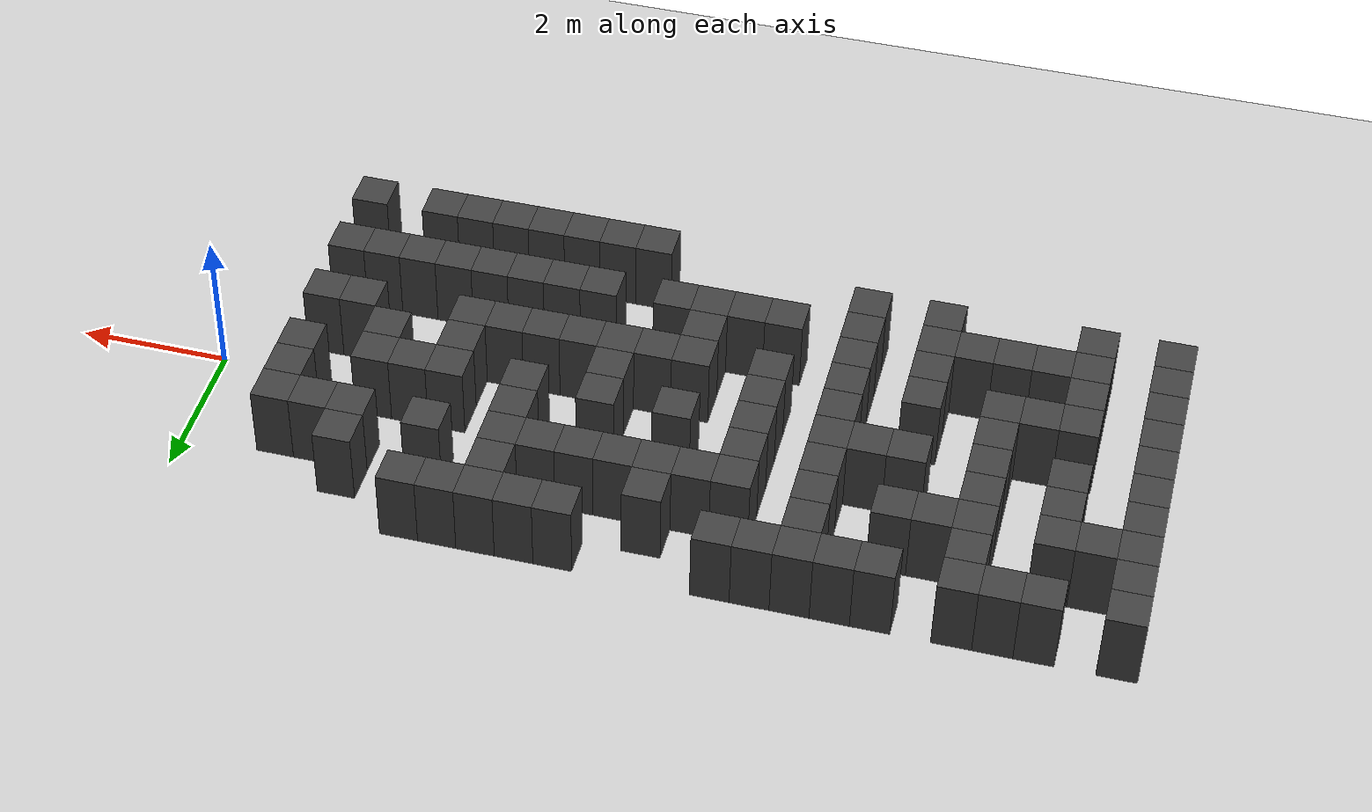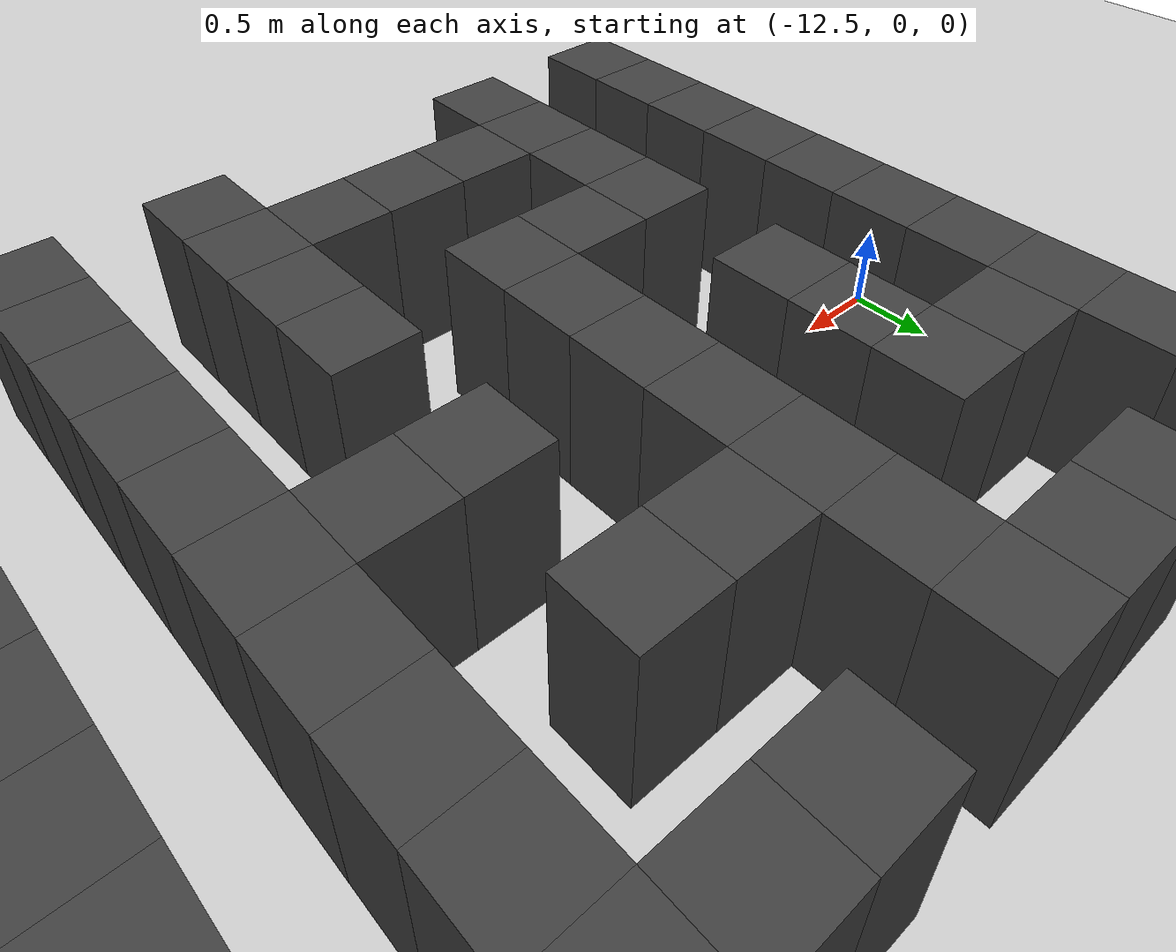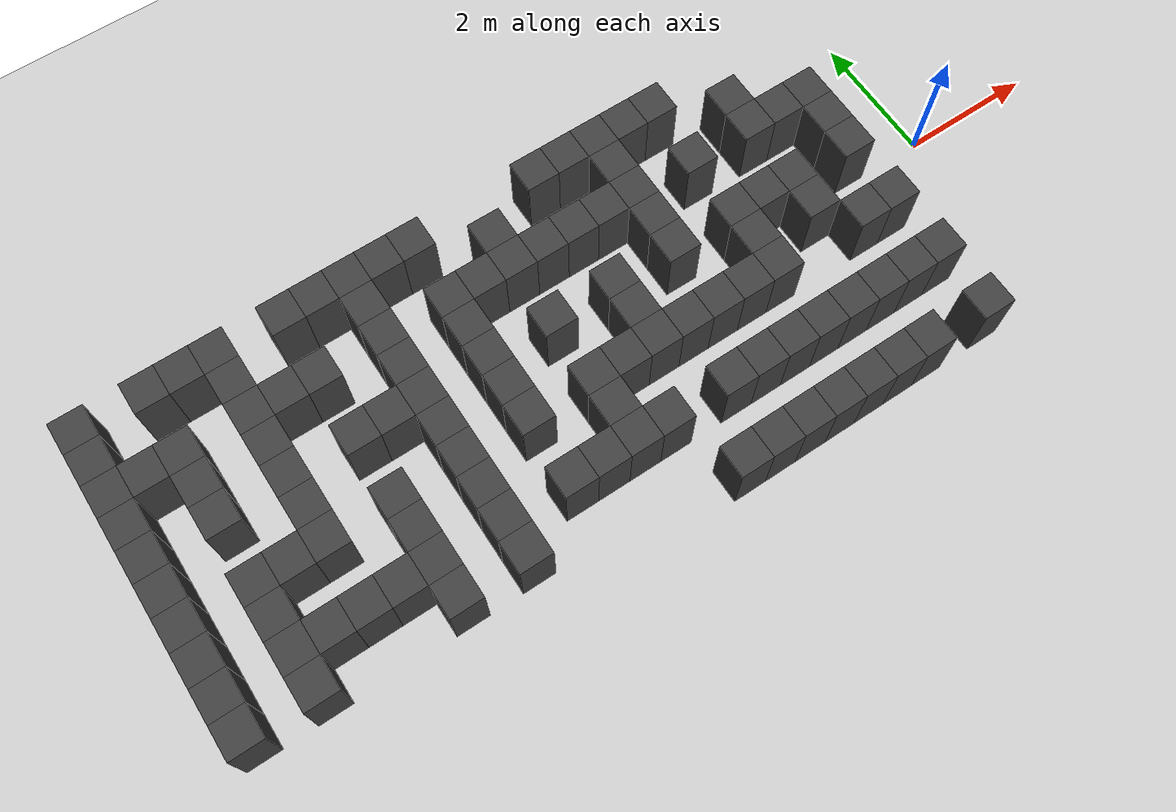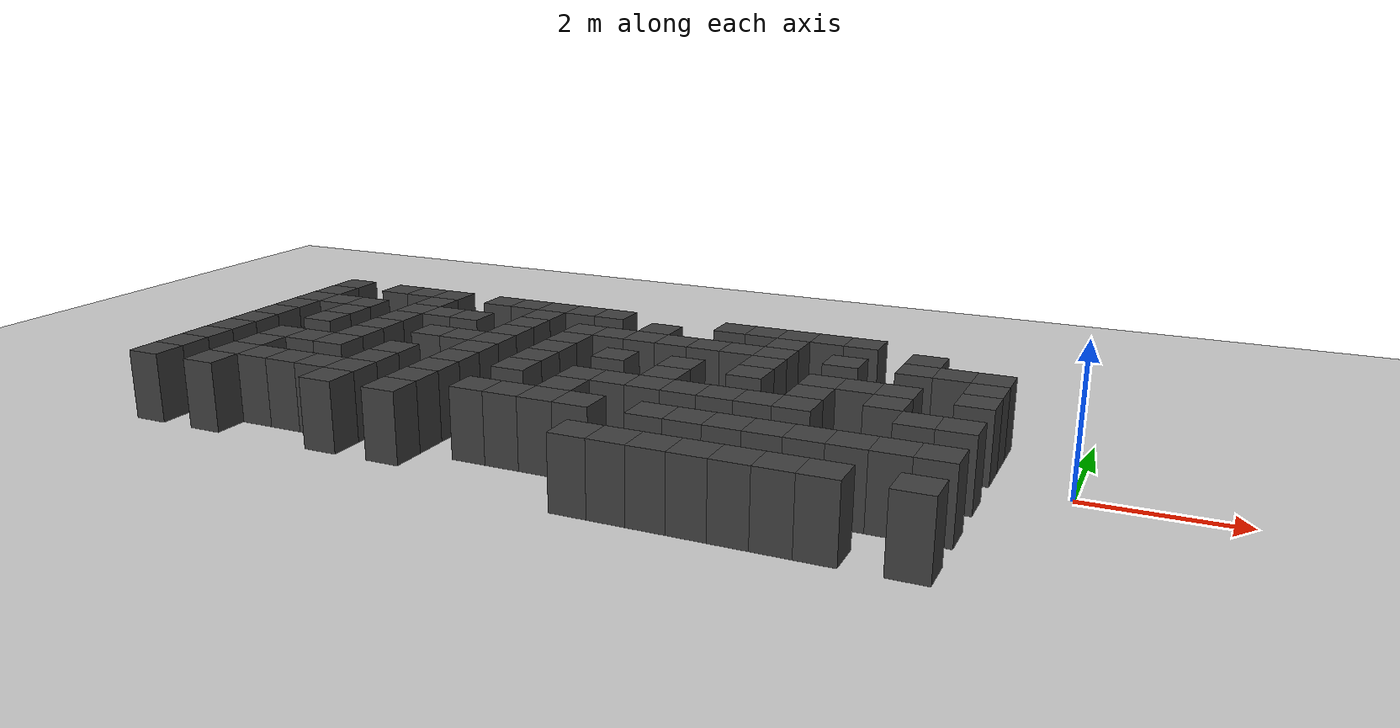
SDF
<sdf version="1.7">
 <world name="map_18332">
  <model name="ground_plane">
   <static>true</static>
   <link name="link">
    <collision name="collision">
     <geometry><plane><normal>0 0 1</normal><size>200 200</size></plane></geometry>
    </collision>
    <visual name="visual">
     <geometry><plane><normal>0 0 1</normal><size>200 200</size></plane></geometry>
     <material><ambient>0.8 0.8 0.8 1</ambient><diffuse>0.8 0.8 0.8 1</diffuse></material>
    </visual>
   </link>
  </model>
  <model name="maze_environment">
   <static>true</static>
   <link name="wall_509">
    <pose>-12.250 2.250 0.500 0 0 0</pose>
    <collision name="col"><geometry><box><size>0.5 0.5 1.0</size></box></geometry></collision>
    <visual name="vis">
     <geometry><box><size>0.5 0.5 1.0</size></box></geometry>
     <material><ambient>0.15 0.15 0.15 1</ambient><diffuse>0.25 0.25 0.25 1</diffuse></material>
    </visual>
   </link>
   <link name="wall_510">
    <pose>-11.250 2.250 0.500 0 0 0</pose>
    <collision name="col"><geometry><box><size>0.5 0.5 1.0</size></box></geometry></collision>
    <visual name="vis">
     <geometry><box><size>0.5 0.5 1.0</size></box></geometry>
     <material><ambient>0.15 0.15 0.15 1</ambient><diffuse>0.25 0.25 0.25 1</diffuse></material>
    </visual>
   </link>
   <link name="wall_511">
    <pose>-10.750 2.250 0.500 0 0 0</pose>
    <collision name="col"><geometry><box><size>0.5 0.5 1.0</size></box></geometry></collision>
    <visual name="vis">
     <geometry><box><size>0.5 0.5 1.0</size></box></geometry>
     <material><ambient>0.15 0.15 0.15 1</ambient><diffuse>0.25 0.25 0.25 1</diffuse></material>
    </visual>
   </link>
   <link name="wall_512">
    <pose>-10.250 2.250 0.500 0 0 0</pose>
    <collision name="col"><geometry><box><size>0.5 0.5 1.0</size></box></geometry></collision>
    <visual name="vis">
     <geometry><box><size>0.5 0.5 1.0</size></box></geometry>
     <material><ambient>0.15 0.15 0.15 1</ambient><diffuse>0.25 0.25 0.25 1</diffuse></material>
    </visual>
   </link>
   <link name="wall_513">
    <pose>-9.250 2.250 0.500 0 0 0</pose>
    <collision name="col"><geometry><box><size>0.5 0.5 1.0</size></box></geometry></collision>
    <visual name="vis">
     <geometry><box><size>0.5 0.5 1.0</size></box></geometry>
     <material><ambient>0.15 0.15 0.15 1</ambient><diffuse>0.25 0.25 0.25 1</diffuse></material>
    </visual>
   </link>
   <link name="wall_514">
    <pose>-8.750 2.250 0.500 0 0 0</pose>
    <collision name="col"><geometry><box><size>0.5 0.5 1.0</size></box></geometry></collision>
    <visual name="vis">
     <geometry><box><size>0.5 0.5 1.0</size></box></geometry>
     <material><ambient>0.15 0.15 0.15 1</ambient><diffuse>0.25 0.25 0.25 1</diffuse></material>
    </visual>
   </link>
   <link name="wall_515">
    <pose>-8.250 2.250 0.500 0 0 0</pose>
    <collision name="col"><geometry><box><size>0.5 0.5 1.0</size></box></geometry></collision>
    <visual name="vis">
     <geometry><box><size>0.5 0.5 1.0</size></box></geometry>
     <material><ambient>0.15 0.15 0.15 1</ambient><diffuse>0.25 0.25 0.25 1</diffuse></material>
    </visual>
   </link>
   <link name="wall_516">
    <pose>-7.750 2.250 0.500 0 0 0</pose>
    <collision name="col"><geometry><box><size>0.5 0.5 1.0</size></box></geometry></collision>
    <visual name="vis">
     <geometry><box><size>0.5 0.5 1.0</size></box></geometry>
     <material><ambient>0.15 0.15 0.15 1</ambient><diffuse>0.25 0.25 0.25 1</diffuse></material>
    </visual>
   </link>
   <link name="wall_517">
    <pose>-7.250 2.250 0.500 0 0 0</pose>
    <collision name="col"><geometry><box><size>0.5 0.5 1.0</size></box></geometry></collision>
    <visual name="vis">
     <geometry><box><size>0.5 0.5 1.0</size></box></geometry>
     <material><ambient>0.15 0.15 0.15 1</ambient><diffuse>0.25 0.25 0.25 1</diffuse></material>
    </visual>
   </link>
   <link name="wall_518">
    <pose>-5.250 2.250 0.500 0 0 0</pose>
    <collision name="col"><geometry><box><size>0.5 0.5 1.0</size></box></geometry></collision>
    <visual name="vis">
     <geometry><box><size>0.5 0.5 1.0</size></box></geometry>
     <material><ambient>0.15 0.15 0.15 1</ambient><diffuse>0.25 0.25 0.25 1</diffuse></material>
    </visual>
   </link>
   <link name="wall_519">
    <pose>-4.750 2.250 0.500 0 0 0</pose>
    <collision name="col"><geometry><box><size>0.5 0.5 1.0</size></box></geometry></collision>
    <visual name="vis">
     <geometry><box><size>0.5 0.5 1.0</size></box></geometry>
     <material><ambient>0.15 0.15 0.15 1</ambient><diffuse>0.25 0.25 0.25 1</diffuse></material>
    </visual>
   </link>
   <link name="wall_520">
    <pose>-4.250 2.250 0.500 0 0 0</pose>
    <collision name="col"><geometry><box><size>0.5 0.5 1.0</size></box></geometry></collision>
    <visual name="vis">
     <geometry><box><size>0.5 0.5 1.0</size></box></geometry>
     <material><ambient>0.15 0.15 0.15 1</ambient><diffuse>0.25 0.25 0.25 1</diffuse></material>
    </visual>
   </link>
   <link name="wall_521">
    <pose>-3.750 2.250 0.500 0 0 0</pose>
    <collision name="col"><geometry><box><size>0.5 0.5 1.0</size></box></geometry></collision>
    <visual name="vis">
     <geometry><box><size>0.5 0.5 1.0</size></box></geometry>
     <material><ambient>0.15 0.15 0.15 1</ambient><diffuse>0.25 0.25 0.25 1</diffuse></material>
    </visual>
   </link>
   <link name="wall_522">
    <pose>-3.250 2.250 0.500 0 0 0</pose>
    <collision name="col"><geometry><box><size>0.5 0.5 1.0</size></box></geometry></collision>
    <visual name="vis">
     <geometry><box><size>0.5 0.5 1.0</size></box></geometry>
     <material><ambient>0.15 0.15 0.15 1</ambient><diffuse>0.25 0.25 0.25 1</diffuse></material>
    </visual>
   </link>
   <link name="wall_544">
    <pose>-12.250 1.750 0.500 0 0 0</pose>
    <collision name="col"><geometry><box><size>0.5 0.5 1.0</size></box></geometry></collision>
    <visual name="vis">
     <geometry><box><size>0.5 0.5 1.0</size></box></geometry>
     <material><ambient>0.15 0.15 0.15 1</ambient><diffuse>0.25 0.25 0.25 1</diffuse></material>
    </visual>
   </link>
   <link name="wall_545">
    <pose>-10.250 1.750 0.500 0 0 0</pose>
    <collision name="col"><geometry><box><size>0.5 0.5 1.0</size></box></geometry></collision>
    <visual name="vis">
     <geometry><box><size>0.5 0.5 1.0</size></box></geometry>
     <material><ambient>0.15 0.15 0.15 1</ambient><diffuse>0.25 0.25 0.25 1</diffuse></material>
    </visual>
   </link>
   <link name="wall_546">
    <pose>-8.250 1.750 0.500 0 0 0</pose>
    <collision name="col"><geometry><box><size>0.5 0.5 1.0</size></box></geometry></collision>
    <visual name="vis">
     <geometry><box><size>0.5 0.5 1.0</size></box></geometry>
     <material><ambient>0.15 0.15 0.15 1</ambient><diffuse>0.25 0.25 0.25 1</diffuse></material>
    </visual>
   </link>
   <link name="wall_547">
    <pose>-6.250 1.750 0.500 0 0 0</pose>
    <collision name="col"><geometry><box><size>0.5 0.5 1.0</size></box></geometry></collision>
    <visual name="vis">
     <geometry><box><size>0.5 0.5 1.0</size></box></geometry>
     <material><ambient>0.15 0.15 0.15 1</ambient><diffuse>0.25 0.25 0.25 1</diffuse></material>
    </visual>
   </link>
   <link name="wall_548">
    <pose>-4.250 1.750 0.500 0 0 0</pose>
    <collision name="col"><geometry><box><size>0.5 0.5 1.0</size></box></geometry></collision>
    <visual name="vis">
     <geometry><box><size>0.5 0.5 1.0</size></box></geometry>
     <material><ambient>0.15 0.15 0.15 1</ambient><diffuse>0.25 0.25 0.25 1</diffuse></material>
    </visual>
   </link>
   <link name="wall_549">
    <pose>-2.250 1.750 0.500 0 0 0</pose>
    <collision name="col"><geometry><box><size>0.5 0.5 1.0</size></box></geometry></collision>
    <visual name="vis">
     <geometry><box><size>0.5 0.5 1.0</size></box></geometry>
     <material><ambient>0.15 0.15 0.15 1</ambient><diffuse>0.25 0.25 0.25 1</diffuse></material>
    </visual>
   </link>
   <link name="wall_558">
    <pose>-12.250 1.250 0.500 0 0 0</pose>
    <collision name="col"><geometry><box><size>0.5 0.5 1.0</size></box></geometry></collision>
    <visual name="vis">
     <geometry><box><size>0.5 0.5 1.0</size></box></geometry>
     <material><ambient>0.15 0.15 0.15 1</ambient><diffuse>0.25 0.25 0.25 1</diffuse></material>
    </visual>
   </link>
   <link name="wall_559">
    <pose>-11.750 1.250 0.500 0 0 0</pose>
    <collision name="col"><geometry><box><size>0.5 0.5 1.0</size></box></geometry></collision>
    <visual name="vis">
     <geometry><box><size>0.5 0.5 1.0</size></box></geometry>
     <material><ambient>0.15 0.15 0.15 1</ambient><diffuse>0.25 0.25 0.25 1</diffuse></material>
    </visual>
   </link>
   <link name="wall_560">
    <pose>-11.250 1.250 0.500 0 0 0</pose>
    <collision name="col"><geometry><box><size>0.5 0.5 1.0</size></box></geometry></collision>
    <visual name="vis">
     <geometry><box><size>0.5 0.5 1.0</size></box></geometry>
     <material><ambient>0.15 0.15 0.15 1</ambient><diffuse>0.25 0.25 0.25 1</diffuse></material>
    </visual>
   </link>
   <link name="wall_561">
    <pose>-10.250 1.250 0.500 0 0 0</pose>
    <collision name="col"><geometry><box><size>0.5 0.5 1.0</size></box></geometry></collision>
    <visual name="vis">
     <geometry><box><size>0.5 0.5 1.0</size></box></geometry>
     <material><ambient>0.15 0.15 0.15 1</ambient><diffuse>0.25 0.25 0.25 1</diffuse></material>
    </visual>
   </link>
   <link name="wall_562">
    <pose>-9.750 1.250 0.500 0 0 0</pose>
    <collision name="col"><geometry><box><size>0.5 0.5 1.0</size></box></geometry></collision>
    <visual name="vis">
     <geometry><box><size>0.5 0.5 1.0</size></box></geometry>
     <material><ambient>0.15 0.15 0.15 1</ambient><diffuse>0.25 0.25 0.25 1</diffuse></material>
    </visual>
   </link>
   <link name="wall_563">
    <pose>-9.250 1.250 0.500 0 0 0</pose>
    <collision name="col"><geometry><box><size>0.5 0.5 1.0</size></box></geometry></collision>
    <visual name="vis">
     <geometry><box><size>0.5 0.5 1.0</size></box></geometry>
     <material><ambient>0.15 0.15 0.15 1</ambient><diffuse>0.25 0.25 0.25 1</diffuse></material>
    </visual>
   </link>
   <link name="wall_564">
    <pose>-8.250 1.250 0.500 0 0 0</pose>
    <collision name="col"><geometry><box><size>0.5 0.5 1.0</size></box></geometry></collision>
    <visual name="vis">
     <geometry><box><size>0.5 0.5 1.0</size></box></geometry>
     <material><ambient>0.15 0.15 0.15 1</ambient><diffuse>0.25 0.25 0.25 1</diffuse></material>
    </visual>
   </link>
   <link name="wall_565">
    <pose>-7.250 1.250 0.500 0 0 0</pose>
    <collision name="col"><geometry><box><size>0.5 0.5 1.0</size></box></geometry></collision>
    <visual name="vis">
     <geometry><box><size>0.5 0.5 1.0</size></box></geometry>
     <material><ambient>0.15 0.15 0.15 1</ambient><diffuse>0.25 0.25 0.25 1</diffuse></material>
    </visual>
   </link>
   <link name="wall_566">
    <pose>-6.750 1.250 0.500 0 0 0</pose>
    <collision name="col"><geometry><box><size>0.5 0.5 1.0</size></box></geometry></collision>
    <visual name="vis">
     <geometry><box><size>0.5 0.5 1.0</size></box></geometry>
     <material><ambient>0.15 0.15 0.15 1</ambient><diffuse>0.25 0.25 0.25 1</diffuse></material>
    </visual>
   </link>
   <link name="wall_567">
    <pose>-6.250 1.250 0.500 0 0 0</pose>
    <collision name="col"><geometry><box><size>0.5 0.5 1.0</size></box></geometry></collision>
    <visual name="vis">
     <geometry><box><size>0.5 0.5 1.0</size></box></geometry>
     <material><ambient>0.15 0.15 0.15 1</ambient><diffuse>0.25 0.25 0.25 1</diffuse></material>
    </visual>
   </link>
   <link name="wall_568">
    <pose>-5.750 1.250 0.500 0 0 0</pose>
    <collision name="col"><geometry><box><size>0.5 0.5 1.0</size></box></geometry></collision>
    <visual name="vis">
     <geometry><box><size>0.5 0.5 1.0</size></box></geometry>
     <material><ambient>0.15 0.15 0.15 1</ambient><diffuse>0.25 0.25 0.25 1</diffuse></material>
    </visual>
   </link>
   <link name="wall_569">
    <pose>-5.250 1.250 0.500 0 0 0</pose>
    <collision name="col"><geometry><box><size>0.5 0.5 1.0</size></box></geometry></collision>
    <visual name="vis">
     <geometry><box><size>0.5 0.5 1.0</size></box></geometry>
     <material><ambient>0.15 0.15 0.15 1</ambient><diffuse>0.25 0.25 0.25 1</diffuse></material>
    </visual>
   </link>
   <link name="wall_570">
    <pose>-4.750 1.250 0.500 0 0 0</pose>
    <collision name="col"><geometry><box><size>0.5 0.5 1.0</size></box></geometry></collision>
    <visual name="vis">
     <geometry><box><size>0.5 0.5 1.0</size></box></geometry>
     <material><ambient>0.15 0.15 0.15 1</ambient><diffuse>0.25 0.25 0.25 1</diffuse></material>
    </visual>
   </link>
   <link name="wall_571">
    <pose>-4.250 1.250 0.500 0 0 0</pose>
    <collision name="col"><geometry><box><size>0.5 0.5 1.0</size></box></geometry></collision>
    <visual name="vis">
     <geometry><box><size>0.5 0.5 1.0</size></box></geometry>
     <material><ambient>0.15 0.15 0.15 1</ambient><diffuse>0.25 0.25 0.25 1</diffuse></material>
    </visual>
   </link>
   <link name="wall_572">
    <pose>-3.250 1.250 0.500 0 0 0</pose>
    <collision name="col"><geometry><box><size>0.5 0.5 1.0</size></box></geometry></collision>
    <visual name="vis">
     <geometry><box><size>0.5 0.5 1.0</size></box></geometry>
     <material><ambient>0.15 0.15 0.15 1</ambient><diffuse>0.25 0.25 0.25 1</diffuse></material>
    </visual>
   </link>
   <link name="wall_573">
    <pose>-2.250 1.250 0.500 0 0 0</pose>
    <collision name="col"><geometry><box><size>0.5 0.5 1.0</size></box></geometry></collision>
    <visual name="vis">
     <geometry><box><size>0.5 0.5 1.0</size></box></geometry>
     <material><ambient>0.15 0.15 0.15 1</ambient><diffuse>0.25 0.25 0.25 1</diffuse></material>
    </visual>
   </link>
   <link name="wall_574">
    <pose>-1.750 1.250 0.500 0 0 0</pose>
    <collision name="col"><geometry><box><size>0.5 0.5 1.0</size></box></geometry></collision>
    <visual name="vis">
     <geometry><box><size>0.5 0.5 1.0</size></box></geometry>
     <material><ambient>0.15 0.15 0.15 1</ambient><diffuse>0.25 0.25 0.25 1</diffuse></material>
    </visual>
   </link>
   <link name="wall_575">
    <pose>-1.250 1.250 0.500 0 0 0</pose>
    <collision name="col"><geometry><box><size>0.5 0.5 1.0</size></box></geometry></collision>
    <visual name="vis">
     <geometry><box><size>0.5 0.5 1.0</size></box></geometry>
     <material><ambient>0.15 0.15 0.15 1</ambient><diffuse>0.25 0.25 0.25 1</diffuse></material>
    </visual>
   </link>
   <link name="wall_594">
    <pose>-12.250 0.750 0.500 0 0 0</pose>
    <collision name="col"><geometry><box><size>0.5 0.5 1.0</size></box></geometry></collision>
    <visual name="vis">
     <geometry><box><size>0.5 0.5 1.0</size></box></geometry>
     <material><ambient>0.15 0.15 0.15 1</ambient><diffuse>0.25 0.25 0.25 1</diffuse></material>
    </visual>
   </link>
   <link name="wall_595">
    <pose>-11.250 0.750 0.500 0 0 0</pose>
    <collision name="col"><geometry><box><size>0.5 0.5 1.0</size></box></geometry></collision>
    <visual name="vis">
     <geometry><box><size>0.5 0.5 1.0</size></box></geometry>
     <material><ambient>0.15 0.15 0.15 1</ambient><diffuse>0.25 0.25 0.25 1</diffuse></material>
    </visual>
   </link>
   <link name="wall_596">
    <pose>-10.250 0.750 0.500 0 0 0</pose>
    <collision name="col"><geometry><box><size>0.5 0.5 1.0</size></box></geometry></collision>
    <visual name="vis">
     <geometry><box><size>0.5 0.5 1.0</size></box></geometry>
     <material><ambient>0.15 0.15 0.15 1</ambient><diffuse>0.25 0.25 0.25 1</diffuse></material>
    </visual>
   </link>
   <link name="wall_597">
    <pose>-8.250 0.750 0.500 0 0 0</pose>
    <collision name="col"><geometry><box><size>0.5 0.5 1.0</size></box></geometry></collision>
    <visual name="vis">
     <geometry><box><size>0.5 0.5 1.0</size></box></geometry>
     <material><ambient>0.15 0.15 0.15 1</ambient><diffuse>0.25 0.25 0.25 1</diffuse></material>
    </visual>
   </link>
   <link name="wall_598">
    <pose>-7.250 0.750 0.500 0 0 0</pose>
    <collision name="col"><geometry><box><size>0.5 0.5 1.0</size></box></geometry></collision>
    <visual name="vis">
     <geometry><box><size>0.5 0.5 1.0</size></box></geometry>
     <material><ambient>0.15 0.15 0.15 1</ambient><diffuse>0.25 0.25 0.25 1</diffuse></material>
    </visual>
   </link>
   <link name="wall_599">
    <pose>-4.250 0.750 0.500 0 0 0</pose>
    <collision name="col"><geometry><box><size>0.5 0.5 1.0</size></box></geometry></collision>
    <visual name="vis">
     <geometry><box><size>0.5 0.5 1.0</size></box></geometry>
     <material><ambient>0.15 0.15 0.15 1</ambient><diffuse>0.25 0.25 0.25 1</diffuse></material>
    </visual>
   </link>
   <link name="wall_600">
    <pose>-1.250 0.750 0.500 0 0 0</pose>
    <collision name="col"><geometry><box><size>0.5 0.5 1.0</size></box></geometry></collision>
    <visual name="vis">
     <geometry><box><size>0.5 0.5 1.0</size></box></geometry>
     <material><ambient>0.15 0.15 0.15 1</ambient><diffuse>0.25 0.25 0.25 1</diffuse></material>
    </visual>
   </link>
   <link name="wall_610">
    <pose>-12.250 0.250 0.500 0 0 0</pose>
    <collision name="col"><geometry><box><size>0.5 0.5 1.0</size></box></geometry></collision>
    <visual name="vis">
     <geometry><box><size>0.5 0.5 1.0</size></box></geometry>
     <material><ambient>0.15 0.15 0.15 1</ambient><diffuse>0.25 0.25 0.25 1</diffuse></material>
    </visual>
   </link>
   <link name="wall_611">
    <pose>-11.250 0.250 0.500 0 0 0</pose>
    <collision name="col"><geometry><box><size>0.5 0.5 1.0</size></box></geometry></collision>
    <visual name="vis">
     <geometry><box><size>0.5 0.5 1.0</size></box></geometry>
     <material><ambient>0.15 0.15 0.15 1</ambient><diffuse>0.25 0.25 0.25 1</diffuse></material>
    </visual>
   </link>
   <link name="wall_612">
    <pose>-10.250 0.250 0.500 0 0 0</pose>
    <collision name="col"><geometry><box><size>0.5 0.5 1.0</size></box></geometry></collision>
    <visual name="vis">
     <geometry><box><size>0.5 0.5 1.0</size></box></geometry>
     <material><ambient>0.15 0.15 0.15 1</ambient><diffuse>0.25 0.25 0.25 1</diffuse></material>
    </visual>
   </link>
   <link name="wall_613">
    <pose>-9.250 0.250 0.500 0 0 0</pose>
    <collision name="col"><geometry><box><size>0.5 0.5 1.0</size></box></geometry></collision>
    <visual name="vis">
     <geometry><box><size>0.5 0.5 1.0</size></box></geometry>
     <material><ambient>0.15 0.15 0.15 1</ambient><diffuse>0.25 0.25 0.25 1</diffuse></material>
    </visual>
   </link>
   <link name="wall_614">
    <pose>-8.750 0.250 0.500 0 0 0</pose>
    <collision name="col"><geometry><box><size>0.5 0.5 1.0</size></box></geometry></collision>
    <visual name="vis">
     <geometry><box><size>0.5 0.5 1.0</size></box></geometry>
     <material><ambient>0.15 0.15 0.15 1</ambient><diffuse>0.25 0.25 0.25 1</diffuse></material>
    </visual>
   </link>
   <link name="wall_615">
    <pose>-8.250 0.250 0.500 0 0 0</pose>
    <collision name="col"><geometry><box><size>0.5 0.5 1.0</size></box></geometry></collision>
    <visual name="vis">
     <geometry><box><size>0.5 0.5 1.0</size></box></geometry>
     <material><ambient>0.15 0.15 0.15 1</ambient><diffuse>0.25 0.25 0.25 1</diffuse></material>
    </visual>
   </link>
   <link name="wall_616">
    <pose>-7.250 0.250 0.500 0 0 0</pose>
    <collision name="col"><geometry><box><size>0.5 0.5 1.0</size></box></geometry></collision>
    <visual name="vis">
     <geometry><box><size>0.5 0.5 1.0</size></box></geometry>
     <material><ambient>0.15 0.15 0.15 1</ambient><diffuse>0.25 0.25 0.25 1</diffuse></material>
    </visual>
   </link>
   <link name="wall_617">
    <pose>-6.250 0.250 0.500 0 0 0</pose>
    <collision name="col"><geometry><box><size>0.5 0.5 1.0</size></box></geometry></collision>
    <visual name="vis">
     <geometry><box><size>0.5 0.5 1.0</size></box></geometry>
     <material><ambient>0.15 0.15 0.15 1</ambient><diffuse>0.25 0.25 0.25 1</diffuse></material>
    </visual>
   </link>
   <link name="wall_618">
    <pose>-5.250 0.250 0.500 0 0 0</pose>
    <collision name="col"><geometry><box><size>0.5 0.5 1.0</size></box></geometry></collision>
    <visual name="vis">
     <geometry><box><size>0.5 0.5 1.0</size></box></geometry>
     <material><ambient>0.15 0.15 0.15 1</ambient><diffuse>0.25 0.25 0.25 1</diffuse></material>
    </visual>
   </link>
   <link name="wall_619">
    <pose>-4.250 0.250 0.500 0 0 0</pose>
    <collision name="col"><geometry><box><size>0.5 0.5 1.0</size></box></geometry></collision>
    <visual name="vis">
     <geometry><box><size>0.5 0.5 1.0</size></box></geometry>
     <material><ambient>0.15 0.15 0.15 1</ambient><diffuse>0.25 0.25 0.25 1</diffuse></material>
    </visual>
   </link>
   <link name="wall_620">
    <pose>-3.250 0.250 0.500 0 0 0</pose>
    <collision name="col"><geometry><box><size>0.5 0.5 1.0</size></box></geometry></collision>
    <visual name="vis">
     <geometry><box><size>0.5 0.5 1.0</size></box></geometry>
     <material><ambient>0.15 0.15 0.15 1</ambient><diffuse>0.25 0.25 0.25 1</diffuse></material>
    </visual>
   </link>
   <link name="wall_621">
    <pose>-2.750 0.250 0.500 0 0 0</pose>
    <collision name="col"><geometry><box><size>0.5 0.5 1.0</size></box></geometry></collision>
    <visual name="vis">
     <geometry><box><size>0.5 0.5 1.0</size></box></geometry>
     <material><ambient>0.15 0.15 0.15 1</ambient><diffuse>0.25 0.25 0.25 1</diffuse></material>
    </visual>
   </link>
   <link name="wall_622">
    <pose>-2.250 0.250 0.500 0 0 0</pose>
    <collision name="col"><geometry><box><size>0.5 0.5 1.0</size></box></geometry></collision>
    <visual name="vis">
     <geometry><box><size>0.5 0.5 1.0</size></box></geometry>
     <material><ambient>0.15 0.15 0.15 1</ambient><diffuse>0.25 0.25 0.25 1</diffuse></material>
    </visual>
   </link>
   <link name="wall_623">
    <pose>-1.250 0.250 0.500 0 0 0</pose>
    <collision name="col"><geometry><box><size>0.5 0.5 1.0</size></box></geometry></collision>
    <visual name="vis">
     <geometry><box><size>0.5 0.5 1.0</size></box></geometry>
     <material><ambient>0.15 0.15 0.15 1</ambient><diffuse>0.25 0.25 0.25 1</diffuse></material>
    </visual>
   </link>
   <link name="wall_642">
    <pose>-12.250 -0.250 0.500 0 0 0</pose>
    <collision name="col"><geometry><box><size>0.5 0.5 1.0</size></box></geometry></collision>
    <visual name="vis">
     <geometry><box><size>0.5 0.5 1.0</size></box></geometry>
     <material><ambient>0.15 0.15 0.15 1</ambient><diffuse>0.25 0.25 0.25 1</diffuse></material>
    </visual>
   </link>
   <link name="wall_643">
    <pose>-10.250 -0.250 0.500 0 0 0</pose>
    <collision name="col"><geometry><box><size>0.5 0.5 1.0</size></box></geometry></collision>
    <visual name="vis">
     <geometry><box><size>0.5 0.5 1.0</size></box></geometry>
     <material><ambient>0.15 0.15 0.15 1</ambient><diffuse>0.25 0.25 0.25 1</diffuse></material>
    </visual>
   </link>
   <link name="wall_644">
    <pose>-8.250 -0.250 0.500 0 0 0</pose>
    <collision name="col"><geometry><box><size>0.5 0.5 1.0</size></box></geometry></collision>
    <visual name="vis">
     <geometry><box><size>0.5 0.5 1.0</size></box></geometry>
     <material><ambient>0.15 0.15 0.15 1</ambient><diffuse>0.25 0.25 0.25 1</diffuse></material>
    </visual>
   </link>
   <link name="wall_645">
    <pose>-7.250 -0.250 0.500 0 0 0</pose>
    <collision name="col"><geometry><box><size>0.5 0.5 1.0</size></box></geometry></collision>
    <visual name="vis">
     <geometry><box><size>0.5 0.5 1.0</size></box></geometry>
     <material><ambient>0.15 0.15 0.15 1</ambient><diffuse>0.25 0.25 0.25 1</diffuse></material>
    </visual>
   </link>
   <link name="wall_646">
    <pose>-5.250 -0.250 0.500 0 0 0</pose>
    <collision name="col"><geometry><box><size>0.5 0.5 1.0</size></box></geometry></collision>
    <visual name="vis">
     <geometry><box><size>0.5 0.5 1.0</size></box></geometry>
     <material><ambient>0.15 0.15 0.15 1</ambient><diffuse>0.25 0.25 0.25 1</diffuse></material>
    </visual>
   </link>
   <link name="wall_647">
    <pose>-3.250 -0.250 0.500 0 0 0</pose>
    <collision name="col"><geometry><box><size>0.5 0.5 1.0</size></box></geometry></collision>
    <visual name="vis">
     <geometry><box><size>0.5 0.5 1.0</size></box></geometry>
     <material><ambient>0.15 0.15 0.15 1</ambient><diffuse>0.25 0.25 0.25 1</diffuse></material>
    </visual>
   </link>
   <link name="wall_648">
    <pose>-2.250 -0.250 0.500 0 0 0</pose>
    <collision name="col"><geometry><box><size>0.5 0.5 1.0</size></box></geometry></collision>
    <visual name="vis">
     <geometry><box><size>0.5 0.5 1.0</size></box></geometry>
     <material><ambient>0.15 0.15 0.15 1</ambient><diffuse>0.25 0.25 0.25 1</diffuse></material>
    </visual>
   </link>
   <link name="wall_657">
    <pose>-12.250 -0.750 0.500 0 0 0</pose>
    <collision name="col"><geometry><box><size>0.5 0.5 1.0</size></box></geometry></collision>
    <visual name="vis">
     <geometry><box><size>0.5 0.5 1.0</size></box></geometry>
     <material><ambient>0.15 0.15 0.15 1</ambient><diffuse>0.25 0.25 0.25 1</diffuse></material>
    </visual>
   </link>
   <link name="wall_658">
    <pose>-11.250 -0.750 0.500 0 0 0</pose>
    <collision name="col"><geometry><box><size>0.5 0.5 1.0</size></box></geometry></collision>
    <visual name="vis">
     <geometry><box><size>0.5 0.5 1.0</size></box></geometry>
     <material><ambient>0.15 0.15 0.15 1</ambient><diffuse>0.25 0.25 0.25 1</diffuse></material>
    </visual>
   </link>
   <link name="wall_659">
    <pose>-10.750 -0.750 0.500 0 0 0</pose>
    <collision name="col"><geometry><box><size>0.5 0.5 1.0</size></box></geometry></collision>
    <visual name="vis">
     <geometry><box><size>0.5 0.5 1.0</size></box></geometry>
     <material><ambient>0.15 0.15 0.15 1</ambient><diffuse>0.25 0.25 0.25 1</diffuse></material>
    </visual>
   </link>
   <link name="wall_660">
    <pose>-10.250 -0.750 0.500 0 0 0</pose>
    <collision name="col"><geometry><box><size>0.5 0.5 1.0</size></box></geometry></collision>
    <visual name="vis">
     <geometry><box><size>0.5 0.5 1.0</size></box></geometry>
     <material><ambient>0.15 0.15 0.15 1</ambient><diffuse>0.25 0.25 0.25 1</diffuse></material>
    </visual>
   </link>
   <link name="wall_661">
    <pose>-9.250 -0.750 0.500 0 0 0</pose>
    <collision name="col"><geometry><box><size>0.5 0.5 1.0</size></box></geometry></collision>
    <visual name="vis">
     <geometry><box><size>0.5 0.5 1.0</size></box></geometry>
     <material><ambient>0.15 0.15 0.15 1</ambient><diffuse>0.25 0.25 0.25 1</diffuse></material>
    </visual>
   </link>
   <link name="wall_662">
    <pose>-8.250 -0.750 0.500 0 0 0</pose>
    <collision name="col"><geometry><box><size>0.5 0.5 1.0</size></box></geometry></collision>
    <visual name="vis">
     <geometry><box><size>0.5 0.5 1.0</size></box></geometry>
     <material><ambient>0.15 0.15 0.15 1</ambient><diffuse>0.25 0.25 0.25 1</diffuse></material>
    </visual>
   </link>
   <link name="wall_663">
    <pose>-7.250 -0.750 0.500 0 0 0</pose>
    <collision name="col"><geometry><box><size>0.5 0.5 1.0</size></box></geometry></collision>
    <visual name="vis">
     <geometry><box><size>0.5 0.5 1.0</size></box></geometry>
     <material><ambient>0.15 0.15 0.15 1</ambient><diffuse>0.25 0.25 0.25 1</diffuse></material>
    </visual>
   </link>
   <link name="wall_664">
    <pose>-6.250 -0.750 0.500 0 0 0</pose>
    <collision name="col"><geometry><box><size>0.5 0.5 1.0</size></box></geometry></collision>
    <visual name="vis">
     <geometry><box><size>0.5 0.5 1.0</size></box></geometry>
     <material><ambient>0.15 0.15 0.15 1</ambient><diffuse>0.25 0.25 0.25 1</diffuse></material>
    </visual>
   </link>
   <link name="wall_665">
    <pose>-5.750 -0.750 0.500 0 0 0</pose>
    <collision name="col"><geometry><box><size>0.5 0.5 1.0</size></box></geometry></collision>
    <visual name="vis">
     <geometry><box><size>0.5 0.5 1.0</size></box></geometry>
     <material><ambient>0.15 0.15 0.15 1</ambient><diffuse>0.25 0.25 0.25 1</diffuse></material>
    </visual>
   </link>
   <link name="wall_666">
    <pose>-5.250 -0.750 0.500 0 0 0</pose>
    <collision name="col"><geometry><box><size>0.5 0.5 1.0</size></box></geometry></collision>
    <visual name="vis">
     <geometry><box><size>0.5 0.5 1.0</size></box></geometry>
     <material><ambient>0.15 0.15 0.15 1</ambient><diffuse>0.25 0.25 0.25 1</diffuse></material>
    </visual>
   </link>
   <link name="wall_667">
    <pose>-4.750 -0.750 0.500 0 0 0</pose>
    <collision name="col"><geometry><box><size>0.5 0.5 1.0</size></box></geometry></collision>
    <visual name="vis">
     <geometry><box><size>0.5 0.5 1.0</size></box></geometry>
     <material><ambient>0.15 0.15 0.15 1</ambient><diffuse>0.25 0.25 0.25 1</diffuse></material>
    </visual>
   </link>
   <link name="wall_668">
    <pose>-4.250 -0.750 0.500 0 0 0</pose>
    <collision name="col"><geometry><box><size>0.5 0.5 1.0</size></box></geometry></collision>
    <visual name="vis">
     <geometry><box><size>0.5 0.5 1.0</size></box></geometry>
     <material><ambient>0.15 0.15 0.15 1</ambient><diffuse>0.25 0.25 0.25 1</diffuse></material>
    </visual>
   </link>
   <link name="wall_669">
    <pose>-3.750 -0.750 0.500 0 0 0</pose>
    <collision name="col"><geometry><box><size>0.5 0.5 1.0</size></box></geometry></collision>
    <visual name="vis">
     <geometry><box><size>0.5 0.5 1.0</size></box></geometry>
     <material><ambient>0.15 0.15 0.15 1</ambient><diffuse>0.25 0.25 0.25 1</diffuse></material>
    </visual>
   </link>
   <link name="wall_670">
    <pose>-3.250 -0.750 0.500 0 0 0</pose>
    <collision name="col"><geometry><box><size>0.5 0.5 1.0</size></box></geometry></collision>
    <visual name="vis">
     <geometry><box><size>0.5 0.5 1.0</size></box></geometry>
     <material><ambient>0.15 0.15 0.15 1</ambient><diffuse>0.25 0.25 0.25 1</diffuse></material>
    </visual>
   </link>
   <link name="wall_671">
    <pose>-1.750 -0.750 0.500 0 0 0</pose>
    <collision name="col"><geometry><box><size>0.5 0.5 1.0</size></box></geometry></collision>
    <visual name="vis">
     <geometry><box><size>0.5 0.5 1.0</size></box></geometry>
     <material><ambient>0.15 0.15 0.15 1</ambient><diffuse>0.25 0.25 0.25 1</diffuse></material>
    </visual>
   </link>
   <link name="wall_672">
    <pose>-1.250 -0.750 0.500 0 0 0</pose>
    <collision name="col"><geometry><box><size>0.5 0.5 1.0</size></box></geometry></collision>
    <visual name="vis">
     <geometry><box><size>0.5 0.5 1.0</size></box></geometry>
     <material><ambient>0.15 0.15 0.15 1</ambient><diffuse>0.25 0.25 0.25 1</diffuse></material>
    </visual>
   </link>
   <link name="wall_692">
    <pose>-12.250 -1.250 0.500 0 0 0</pose>
    <collision name="col"><geometry><box><size>0.5 0.5 1.0</size></box></geometry></collision>
    <visual name="vis">
     <geometry><box><size>0.5 0.5 1.0</size></box></geometry>
     <material><ambient>0.15 0.15 0.15 1</ambient><diffuse>0.25 0.25 0.25 1</diffuse></material>
    </visual>
   </link>
   <link name="wall_693">
    <pose>-11.250 -1.250 0.500 0 0 0</pose>
    <collision name="col"><geometry><box><size>0.5 0.5 1.0</size></box></geometry></collision>
    <visual name="vis">
     <geometry><box><size>0.5 0.5 1.0</size></box></geometry>
     <material><ambient>0.15 0.15 0.15 1</ambient><diffuse>0.25 0.25 0.25 1</diffuse></material>
    </visual>
   </link>
   <link name="wall_694">
    <pose>-9.250 -1.250 0.500 0 0 0</pose>
    <collision name="col"><geometry><box><size>0.5 0.5 1.0</size></box></geometry></collision>
    <visual name="vis">
     <geometry><box><size>0.5 0.5 1.0</size></box></geometry>
     <material><ambient>0.15 0.15 0.15 1</ambient><diffuse>0.25 0.25 0.25 1</diffuse></material>
    </visual>
   </link>
   <link name="wall_695">
    <pose>-8.250 -1.250 0.500 0 0 0</pose>
    <collision name="col"><geometry><box><size>0.5 0.5 1.0</size></box></geometry></collision>
    <visual name="vis">
     <geometry><box><size>0.5 0.5 1.0</size></box></geometry>
     <material><ambient>0.15 0.15 0.15 1</ambient><diffuse>0.25 0.25 0.25 1</diffuse></material>
    </visual>
   </link>
   <link name="wall_696">
    <pose>-6.250 -1.250 0.500 0 0 0</pose>
    <collision name="col"><geometry><box><size>0.5 0.5 1.0</size></box></geometry></collision>
    <visual name="vis">
     <geometry><box><size>0.5 0.5 1.0</size></box></geometry>
     <material><ambient>0.15 0.15 0.15 1</ambient><diffuse>0.25 0.25 0.25 1</diffuse></material>
    </visual>
   </link>
   <link name="wall_706">
    <pose>-12.250 -1.750 0.500 0 0 0</pose>
    <collision name="col"><geometry><box><size>0.5 0.5 1.0</size></box></geometry></collision>
    <visual name="vis">
     <geometry><box><size>0.5 0.5 1.0</size></box></geometry>
     <material><ambient>0.15 0.15 0.15 1</ambient><diffuse>0.25 0.25 0.25 1</diffuse></material>
    </visual>
   </link>
   <link name="wall_707">
    <pose>-11.250 -1.750 0.500 0 0 0</pose>
    <collision name="col"><geometry><box><size>0.5 0.5 1.0</size></box></geometry></collision>
    <visual name="vis">
     <geometry><box><size>0.5 0.5 1.0</size></box></geometry>
     <material><ambient>0.15 0.15 0.15 1</ambient><diffuse>0.25 0.25 0.25 1</diffuse></material>
    </visual>
   </link>
   <link name="wall_708">
    <pose>-10.750 -1.750 0.500 0 0 0</pose>
    <collision name="col"><geometry><box><size>0.5 0.5 1.0</size></box></geometry></collision>
    <visual name="vis">
     <geometry><box><size>0.5 0.5 1.0</size></box></geometry>
     <material><ambient>0.15 0.15 0.15 1</ambient><diffuse>0.25 0.25 0.25 1</diffuse></material>
    </visual>
   </link>
   <link name="wall_709">
    <pose>-10.250 -1.750 0.500 0 0 0</pose>
    <collision name="col"><geometry><box><size>0.5 0.5 1.0</size></box></geometry></collision>
    <visual name="vis">
     <geometry><box><size>0.5 0.5 1.0</size></box></geometry>
     <material><ambient>0.15 0.15 0.15 1</ambient><diffuse>0.25 0.25 0.25 1</diffuse></material>
    </visual>
   </link>
   <link name="wall_710">
    <pose>-9.750 -1.750 0.500 0 0 0</pose>
    <collision name="col"><geometry><box><size>0.5 0.5 1.0</size></box></geometry></collision>
    <visual name="vis">
     <geometry><box><size>0.5 0.5 1.0</size></box></geometry>
     <material><ambient>0.15 0.15 0.15 1</ambient><diffuse>0.25 0.25 0.25 1</diffuse></material>
    </visual>
   </link>
   <link name="wall_711">
    <pose>-9.250 -1.750 0.500 0 0 0</pose>
    <collision name="col"><geometry><box><size>0.5 0.5 1.0</size></box></geometry></collision>
    <visual name="vis">
     <geometry><box><size>0.5 0.5 1.0</size></box></geometry>
     <material><ambient>0.15 0.15 0.15 1</ambient><diffuse>0.25 0.25 0.25 1</diffuse></material>
    </visual>
   </link>
   <link name="wall_712">
    <pose>-8.250 -1.750 0.500 0 0 0</pose>
    <collision name="col"><geometry><box><size>0.5 0.5 1.0</size></box></geometry></collision>
    <visual name="vis">
     <geometry><box><size>0.5 0.5 1.0</size></box></geometry>
     <material><ambient>0.15 0.15 0.15 1</ambient><diffuse>0.25 0.25 0.25 1</diffuse></material>
    </visual>
   </link>
   <link name="wall_713">
    <pose>-7.250 -1.750 0.500 0 0 0</pose>
    <collision name="col"><geometry><box><size>0.5 0.5 1.0</size></box></geometry></collision>
    <visual name="vis">
     <geometry><box><size>0.5 0.5 1.0</size></box></geometry>
     <material><ambient>0.15 0.15 0.15 1</ambient><diffuse>0.25 0.25 0.25 1</diffuse></material>
    </visual>
   </link>
   <link name="wall_714">
    <pose>-6.750 -1.750 0.500 0 0 0</pose>
    <collision name="col"><geometry><box><size>0.5 0.5 1.0</size></box></geometry></collision>
    <visual name="vis">
     <geometry><box><size>0.5 0.5 1.0</size></box></geometry>
     <material><ambient>0.15 0.15 0.15 1</ambient><diffuse>0.25 0.25 0.25 1</diffuse></material>
    </visual>
   </link>
   <link name="wall_715">
    <pose>-6.250 -1.750 0.500 0 0 0</pose>
    <collision name="col"><geometry><box><size>0.5 0.5 1.0</size></box></geometry></collision>
    <visual name="vis">
     <geometry><box><size>0.5 0.5 1.0</size></box></geometry>
     <material><ambient>0.15 0.15 0.15 1</ambient><diffuse>0.25 0.25 0.25 1</diffuse></material>
    </visual>
   </link>
   <link name="wall_716">
    <pose>-5.750 -1.750 0.500 0 0 0</pose>
    <collision name="col"><geometry><box><size>0.5 0.5 1.0</size></box></geometry></collision>
    <visual name="vis">
     <geometry><box><size>0.5 0.5 1.0</size></box></geometry>
     <material><ambient>0.15 0.15 0.15 1</ambient><diffuse>0.25 0.25 0.25 1</diffuse></material>
    </visual>
   </link>
   <link name="wall_717">
    <pose>-4.750 -1.750 0.500 0 0 0</pose>
    <collision name="col"><geometry><box><size>0.5 0.5 1.0</size></box></geometry></collision>
    <visual name="vis">
     <geometry><box><size>0.5 0.5 1.0</size></box></geometry>
     <material><ambient>0.15 0.15 0.15 1</ambient><diffuse>0.25 0.25 0.25 1</diffuse></material>
    </visual>
   </link>
   <link name="wall_718">
    <pose>-4.250 -1.750 0.500 0 0 0</pose>
    <collision name="col"><geometry><box><size>0.5 0.5 1.0</size></box></geometry></collision>
    <visual name="vis">
     <geometry><box><size>0.5 0.5 1.0</size></box></geometry>
     <material><ambient>0.15 0.15 0.15 1</ambient><diffuse>0.25 0.25 0.25 1</diffuse></material>
    </visual>
   </link>
   <link name="wall_719">
    <pose>-3.750 -1.750 0.500 0 0 0</pose>
    <collision name="col"><geometry><box><size>0.5 0.5 1.0</size></box></geometry></collision>
    <visual name="vis">
     <geometry><box><size>0.5 0.5 1.0</size></box></geometry>
     <material><ambient>0.15 0.15 0.15 1</ambient><diffuse>0.25 0.25 0.25 1</diffuse></material>
    </visual>
   </link>
   <link name="wall_720">
    <pose>-3.250 -1.750 0.500 0 0 0</pose>
    <collision name="col"><geometry><box><size>0.5 0.5 1.0</size></box></geometry></collision>
    <visual name="vis">
     <geometry><box><size>0.5 0.5 1.0</size></box></geometry>
     <material><ambient>0.15 0.15 0.15 1</ambient><diffuse>0.25 0.25 0.25 1</diffuse></material>
    </visual>
   </link>
   <link name="wall_721">
    <pose>-2.750 -1.750 0.500 0 0 0</pose>
    <collision name="col"><geometry><box><size>0.5 0.5 1.0</size></box></geometry></collision>
    <visual name="vis">
     <geometry><box><size>0.5 0.5 1.0</size></box></geometry>
     <material><ambient>0.15 0.15 0.15 1</ambient><diffuse>0.25 0.25 0.25 1</diffuse></material>
    </visual>
   </link>
   <link name="wall_722">
    <pose>-2.250 -1.750 0.500 0 0 0</pose>
    <collision name="col"><geometry><box><size>0.5 0.5 1.0</size></box></geometry></collision>
    <visual name="vis">
     <geometry><box><size>0.5 0.5 1.0</size></box></geometry>
     <material><ambient>0.15 0.15 0.15 1</ambient><diffuse>0.25 0.25 0.25 1</diffuse></material>
    </visual>
   </link>
   <link name="wall_723">
    <pose>-1.750 -1.750 0.500 0 0 0</pose>
    <collision name="col"><geometry><box><size>0.5 0.5 1.0</size></box></geometry></collision>
    <visual name="vis">
     <geometry><box><size>0.5 0.5 1.0</size></box></geometry>
     <material><ambient>0.15 0.15 0.15 1</ambient><diffuse>0.25 0.25 0.25 1</diffuse></material>
    </visual>
   </link>
   <link name="wall_724">
    <pose>-1.250 -1.750 0.500 0 0 0</pose>
    <collision name="col"><geometry><box><size>0.5 0.5 1.0</size></box></geometry></collision>
    <visual name="vis">
     <geometry><box><size>0.5 0.5 1.0</size></box></geometry>
     <material><ambient>0.15 0.15 0.15 1</ambient><diffuse>0.25 0.25 0.25 1</diffuse></material>
    </visual>
   </link>
   <link name="wall_745">
    <pose>-12.250 -2.250 0.500 0 0 0</pose>
    <collision name="col"><geometry><box><size>0.5 0.5 1.0</size></box></geometry></collision>
    <visual name="vis">
     <geometry><box><size>0.5 0.5 1.0</size></box></geometry>
     <material><ambient>0.15 0.15 0.15 1</ambient><diffuse>0.25 0.25 0.25 1</diffuse></material>
    </visual>
   </link>
   <link name="wall_746">
    <pose>-11.250 -2.250 0.500 0 0 0</pose>
    <collision name="col"><geometry><box><size>0.5 0.5 1.0</size></box></geometry></collision>
    <visual name="vis">
     <geometry><box><size>0.5 0.5 1.0</size></box></geometry>
     <material><ambient>0.15 0.15 0.15 1</ambient><diffuse>0.25 0.25 0.25 1</diffuse></material>
    </visual>
   </link>
   <link name="wall_747">
    <pose>-9.250 -2.250 0.500 0 0 0</pose>
    <collision name="col"><geometry><box><size>0.5 0.5 1.0</size></box></geometry></collision>
    <visual name="vis">
     <geometry><box><size>0.5 0.5 1.0</size></box></geometry>
     <material><ambient>0.15 0.15 0.15 1</ambient><diffuse>0.25 0.25 0.25 1</diffuse></material>
    </visual>
   </link>
   <link name="wall_748">
    <pose>-8.250 -2.250 0.500 0 0 0</pose>
    <collision name="col"><geometry><box><size>0.5 0.5 1.0</size></box></geometry></collision>
    <visual name="vis">
     <geometry><box><size>0.5 0.5 1.0</size></box></geometry>
     <material><ambient>0.15 0.15 0.15 1</ambient><diffuse>0.25 0.25 0.25 1</diffuse></material>
    </visual>
   </link>
   <link name="wall_764">
    <pose>-5.250 -2.750 0.500 0 0 0</pose>
    <collision name="col"><geometry><box><size>0.5 0.5 1.0</size></box></geometry></collision>
    <visual name="vis">
     <geometry><box><size>0.5 0.5 1.0</size></box></geometry>
     <material><ambient>0.15 0.15 0.15 1</ambient><diffuse>0.25 0.25 0.25 1</diffuse></material>
    </visual>
   </link>
   <link name="wall_765">
    <pose>-4.750 -2.750 0.500 0 0 0</pose>
    <collision name="col"><geometry><box><size>0.5 0.5 1.0</size></box></geometry></collision>
    <visual name="vis">
     <geometry><box><size>0.5 0.5 1.0</size></box></geometry>
     <material><ambient>0.15 0.15 0.15 1</ambient><diffuse>0.25 0.25 0.25 1</diffuse></material>
    </visual>
   </link>
   <link name="wall_766">
    <pose>-4.250 -2.750 0.500 0 0 0</pose>
    <collision name="col"><geometry><box><size>0.5 0.5 1.0</size></box></geometry></collision>
    <visual name="vis">
     <geometry><box><size>0.5 0.5 1.0</size></box></geometry>
     <material><ambient>0.15 0.15 0.15 1</ambient><diffuse>0.25 0.25 0.25 1</diffuse></material>
    </visual>
   </link>
   <link name="wall_767">
    <pose>-3.750 -2.750 0.500 0 0 0</pose>
    <collision name="col"><geometry><box><size>0.5 0.5 1.0</size></box></geometry></collision>
    <visual name="vis">
     <geometry><box><size>0.5 0.5 1.0</size></box></geometry>
     <material><ambient>0.15 0.15 0.15 1</ambient><diffuse>0.25 0.25 0.25 1</diffuse></material>
    </visual>
   </link>
   <link name="wall_768">
    <pose>-3.250 -2.750 0.500 0 0 0</pose>
    <collision name="col"><geometry><box><size>0.5 0.5 1.0</size></box></geometry></collision>
    <visual name="vis">
     <geometry><box><size>0.5 0.5 1.0</size></box></geometry>
     <material><ambient>0.15 0.15 0.15 1</ambient><diffuse>0.25 0.25 0.25 1</diffuse></material>
    </visual>
   </link>
   <link name="wall_769">
    <pose>-2.750 -2.750 0.500 0 0 0</pose>
    <collision name="col"><geometry><box><size>0.5 0.5 1.0</size></box></geometry></collision>
    <visual name="vis">
     <geometry><box><size>0.5 0.5 1.0</size></box></geometry>
     <material><ambient>0.15 0.15 0.15 1</ambient><diffuse>0.25 0.25 0.25 1</diffuse></material>
    </visual>
   </link>
   <link name="wall_770">
    <pose>-2.250 -2.750 0.500 0 0 0</pose>
    <collision name="col"><geometry><box><size>0.5 0.5 1.0</size></box></geometry></collision>
    <visual name="vis">
     <geometry><box><size>0.5 0.5 1.0</size></box></geometry>
     <material><ambient>0.15 0.15 0.15 1</ambient><diffuse>0.25 0.25 0.25 1</diffuse></material>
    </visual>
   </link>
   <link name="wall_771">
    <pose>-1.250 -2.750 0.500 0 0 0</pose>
    <collision name="col"><geometry><box><size>0.5 0.5 1.0</size></box></geometry></collision>
    <visual name="vis">
     <geometry><box><size>0.5 0.5 1.0</size></box></geometry>
     <material><ambient>0.15 0.15 0.15 1</ambient><diffuse>0.25 0.25 0.25 1</diffuse></material>
    </visual>
   </link>
  </model>
 </world>
</sdf>
